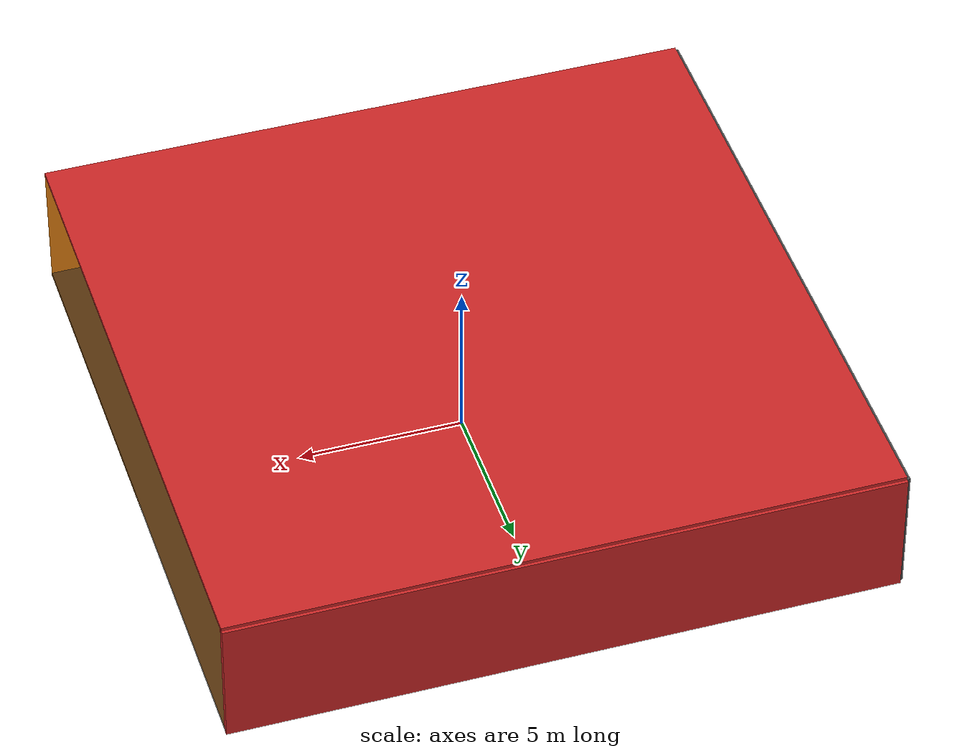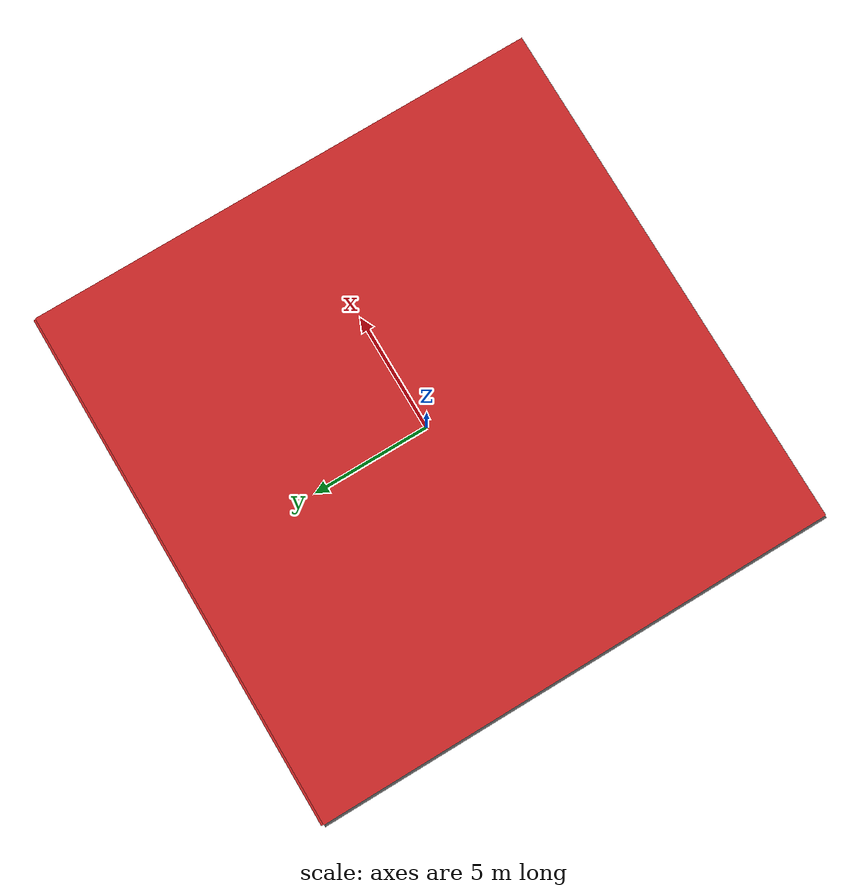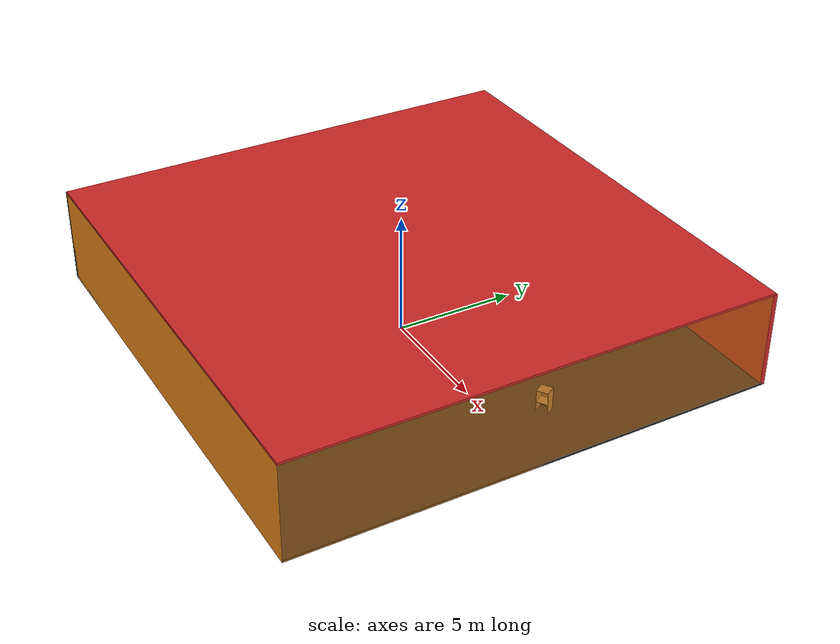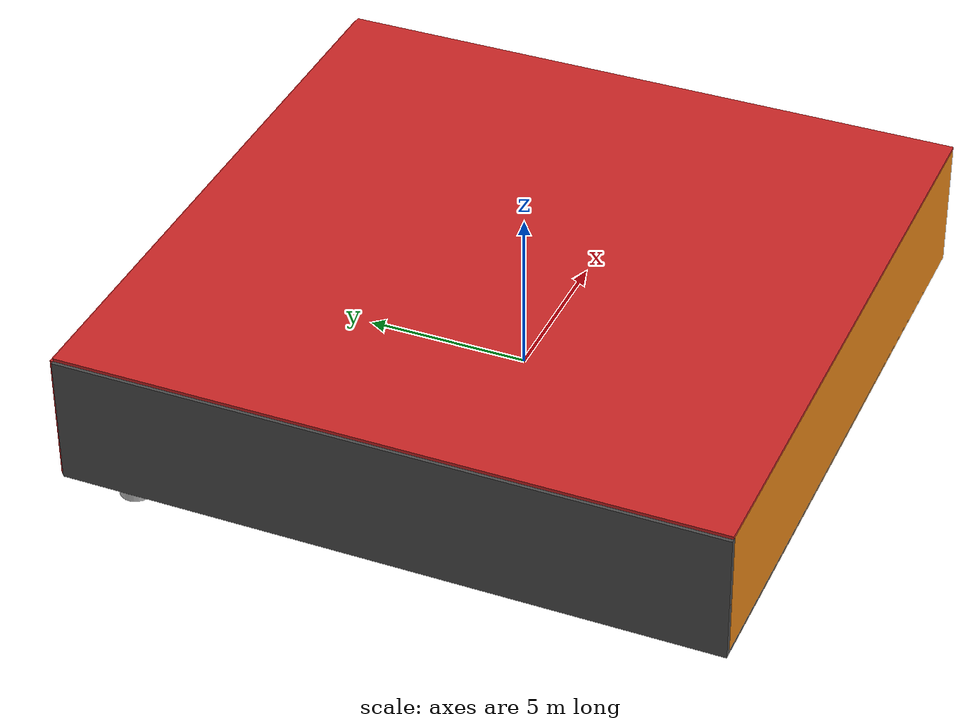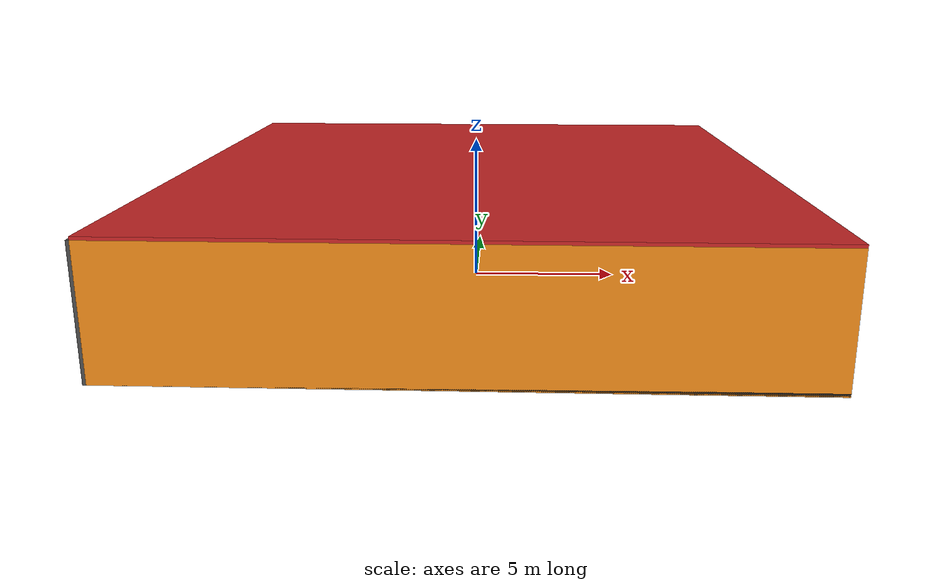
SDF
<sdf version="1.4">
 <world name="default">
  <physics type="ode">
   <max_step_size>0.001</max_step_size>
   <real_time_factor>1</real_time_factor>
   <real_time_update_rate>1000</real_time_update_rate>
   <gravity>0 0 -9.8</gravity>
  </physics>
  <scene><ambient>0.4 0.4 0.4 1</ambient><background>0.7 0.7 0.7 1</background><shadows>1</shadows></scene>
  <model name="Surrounding">
   <static>1</static>
   <link name="Ceiling">
    <collision name="Ceiling_Collision"><geometry><box><size>20 20 0.1</size></box></geometry></collision>
    <visual name="Ceiling_Visual">
     <geometry><box><size>20 20 0.1</size></box></geometry>
     <material>
      <script><uri>file://media/materials/scripts/gazebo.material</uri><name>Gazebo/Red</name></script>
     </material>
    </visual>
    <pose>0 0 4.05 0 0 0</pose>
   </link>
   <link name="Wall_South">
    <collision name="Wall_South_Collision">
     <geometry><box><size>20 0 4</size></box></geometry>
     <pose>0 0 2 0 -0 0</pose>
    </collision>
    <visual name="Wall_South_Visual">
     <pose>0 0 2 0 -0 0</pose>
     <geometry><box><size>20 0 4</size></box></geometry>
     <material>
      <script><uri>file://media/materials/scripts/gazebo.material</uri><name>Gazebo/Orange</name></script>
     </material>
    </visual>
    <velocity_decay><linear>0</linear><angular>0</angular></velocity_decay>
    <pose>0 -10 0 0 -0 0</pose>
   </link>
   <link name="Wall_East">
    <collision name="Wall_21_Collision">
     <geometry><box><size>20 0 4</size></box></geometry>
     <pose>0 0 2 0 -0 0</pose>
    </collision>
    <visual name="Wall_21_Visual">
     <pose>0 0 2 0 -0 0</pose>
     <geometry><box><size>20 0 4</size></box></geometry>
     <material>
      <script>
       <uri>file://media/materials/scripts/gazebo.material</uri>
       <name>Gazebo/OrangeTransparent</name>
      </script>
     </material>
    </visual>
    <velocity_decay><linear>0</linear><angular>0</angular></velocity_decay>
    <pose>10 0 0 0 -0 1.5708</pose>
   </link>
   <link name="Wall_North">
    <collision name="Wall_22_Collision">
     <geometry><box><size>20 0.2 4</size></box></geometry>
     <pose>0 0 2 0 -0 0</pose>
    </collision>
    <visual name="Wall_22_Visual">
     <pose>0 0 2 0 -0 0</pose>
     <geometry><box><size>20 0.2 4</size></box></geometry>
     <material>
      <script><uri>file://media/materials/scripts/gazebo.material</uri><name>Gazebo/RedGlow</name></script>
     </material>
    </visual>
    <velocity_decay><linear>0</linear><angular>0</angular></velocity_decay>
    <pose>0 10 0 0 -0 0</pose>
   </link>
   <link name="Wall_West">
    <collision name="Wall_23_Collision">
     <geometry><box><size>20 0.2 4</size></box></geometry>
     <pose>0 0 2 0 -0 0</pose>
    </collision>
    <visual name="Wall_23_Visual">
     <pose>0 0 2 0 -0 0</pose>
     <geometry><box><size>20 0.2 4</size></box></geometry>
     <material>
      <script><uri>file://media/materials/scripts/gazebo.material</uri><name>Gazebo/Road</name></script>
     </material>
    </visual>
    <velocity_decay><linear>0</linear><angular>0</angular></velocity_decay>
    <pose>-10 0 0 0 0 -1.5708</pose>
   </link>
   <link name="Ground_link">
    <collision name="collision">
     <pose>0 0 .05 0 -0 0</pose>
     <geometry><box><size>20 20 0.1</size></box></geometry>
    </collision>
    <visual name="visual">
     <pose>0 0 .05 0 -0 0</pose>
     <geometry><box><size>20 20 0.1</size></box></geometry>
     <material>
      <script><uri>file://media/materials/scripts/gazebo.material</uri><name>Gazebo/Black</name></script>
     </material>
    </visual>
   </link>
   <static>1</static>
  </model>
  <spherical_coordinates>
   <surface_model>EARTH_WGS84</surface_model>
   <latitude_deg>0</latitude_deg>
   <longitude_deg>0</longitude_deg>
   <elevation>0</elevation>
   <heading_deg>0</heading_deg>
  </spherical_coordinates>
  <light name="lightball_0" type="diffuse">
   <diffuse>0.8 0.8 0.8 1</diffuse>
   <specular>0.2 0.2 0.2 1</specular>
   <attenuation>
    <range>100</range>
    <constant>0.7</constant>
    <linear>0.01</linear>
    <quadratic>0.001</quadratic>
   </attenuation>
   <direction>-0.5 0.1 -0.9</direction>
   <pose>-8.22381691531 5.16176574636 3.73340577541 0 0 0</pose>
  </light>
  <light name="lightball_1" type="diffuse">
   <diffuse>0.8 0.8 0.8 1</diffuse>
   <specular>0.2 0.2 0.2 1</specular>
   <attenuation>
    <range>100</range>
    <constant>0.7</constant>
    <linear>0.01</linear>
    <quadratic>0.001</quadratic>
   </attenuation>
   <direction>-0.5 0.1 -0.9</direction>
   <pose>6.5133762964 -4.52632888793 2.7823363067 0 0 0</pose>
  </light>
  <light name="lightball_2" type="diffuse">
   <diffuse>0.8 0.8 0.8 1</diffuse>
   <specular>0.2 0.2 0.2 1</specular>
   <attenuation>
    <range>100</range>
    <constant>0.7</constant>
    <linear>0.01</linear>
    <quadratic>0.001</quadratic>
   </attenuation>
   <direction>-0.5 0.1 -0.9</direction>
   <pose>8.03369768511 5.46697998847 1.45496378601 0 0 0</pose>
  </light>
  <light name="lightball_3" type="diffuse">
   <diffuse>0.8 0.8 0.8 1</diffuse>
   <specular>0.2 0.2 0.2 1</specular>
   <attenuation>
    <range>100</range>
    <constant>0.7</constant>
    <linear>0.01</linear>
    <quadratic>0.001</quadratic>
   </attenuation>
   <direction>-0.5 0.1 -0.9</direction>
   <pose>-9.92515317621 5.54255407826 1.54493936994 0 0 0</pose>
  </light>
  <light name="lightball_4" type="diffuse">
   <diffuse>0.8 0.8 0.8 1</diffuse>
   <specular>0.2 0.2 0.2 1</specular>
   <attenuation>
    <range>100</range>
    <constant>0.7</constant>
    <linear>0.01</linear>
    <quadratic>0.001</quadratic>
   </attenuation>
   <direction>-0.5 0.1 -0.9</direction>
   <pose>1.18542914822 9.01332119047 1.81723584124 0 0 0</pose>
  </light>
  <light name="lightball_5" type="diffuse">
   <diffuse>0.8 0.8 0.8 1</diffuse>
   <specular>0.2 0.2 0.2 1</specular>
   <attenuation>
    <range>100</range>
    <constant>0.7</constant>
    <linear>0.01</linear>
    <quadratic>0.001</quadratic>
   </attenuation>
   <direction>-0.5 0.1 -0.9</direction>
   <pose>6.67155795166 5.377199683 1.07130834705 0 0 0</pose>
  </light>
  <light name="lightball_6" type="diffuse">
   <diffuse>0.8 0.8 0.8 1</diffuse>
   <specular>0.2 0.2 0.2 1</specular>
   <attenuation>
    <range>100</range>
    <constant>0.7</constant>
    <linear>0.01</linear>
    <quadratic>0.001</quadratic>
   </attenuation>
   <direction>-0.5 0.1 -0.9</direction>
   <pose>5.2756489095 8.58521230292 2.63912321762 0 0 0</pose>
  </light>
  <light name="lightball_7" type="diffuse">
   <diffuse>0.8 0.8 0.8 1</diffuse>
   <specular>0.2 0.2 0.2 1</specular>
   <attenuation>
    <range>100</range>
    <constant>0.7</constant>
    <linear>0.01</linear>
    <quadratic>0.001</quadratic>
   </attenuation>
   <direction>-0.5 0.1 -0.9</direction>
   <pose>0.345683285311 7.87131947373 1.7827433434 0 0 0</pose>
  </light>
  <light name="lightball_8" type="diffuse">
   <diffuse>0.8 0.8 0.8 1</diffuse>
   <specular>0.2 0.2 0.2 1</specular>
   <attenuation>
    <range>100</range>
    <constant>0.7</constant>
    <linear>0.01</linear>
    <quadratic>0.001</quadratic>
   </attenuation>
   <direction>-0.5 0.1 -0.9</direction>
   <pose>0.853890919984 3.3578976469 1.93805899357 0 0 0</pose>
  </light>
  <light name="lightball_9" type="diffuse">
   <diffuse>0.8 0.8 0.8 1</diffuse>
   <specular>0.2 0.2 0.2 1</specular>
   <attenuation>
    <range>100</range>
    <constant>0.7</constant>
    <linear>0.01</linear>
    <quadratic>0.001</quadratic>
   </attenuation>
   <direction>-0.5 0.1 -0.9</direction>
   <pose>-2.96872390031 -5.10896564358 0.649847195382 0 0 0</pose>
  </light>
  <light name="lightball_10" type="diffuse">
   <diffuse>0.8 0.8 0.8 1</diffuse>
   <specular>0.2 0.2 0.2 1</specular>
   <attenuation>
    <range>100</range>
    <constant>0.7</constant>
    <linear>0.01</linear>
    <quadratic>0.001</quadratic>
   </attenuation>
   <direction>-0.5 0.1 -0.9</direction>
   <pose>-9.71822195326 -2.55483154313 0.582181860133 0 0 0</pose>
  </light>
  <include>
   <uri>model://robocup_3Dsim_goal</uri>
   <pose>-7.81032593242 -5.27023300662 0 0 0 1.20751700859</pose>
  </include>
  <include>
   <uri>model://textured_shapes</uri>
   <pose>-7.98533582233 7.42826725783 0 0 0 1.12167060952</pose>
  </include>
  <include>
   <uri>model://construction_cone</uri>
   <pose>-1.43520132421 -4.24468907515 0 0 0 1.91322202793</pose>
  </include>
  <include><uri>model://table</uri><pose>-1.01945319993 4.60232617032 0 0 0 0.187847791577</pose></include>
  <include><uri>model://cabinet</uri><pose>1.53276294481 -3.74954524738 0 0 0 2.87751131238</pose></include>
  <include><uri>model://cabinet</uri><pose>1.29639726524 -2.22880255406 0 0 0 2.09755193741</pose></include>
  <include><uri>model://cabinet</uri><pose>7.37138305517 1.86687769313 0 0 0 2.13763680034</pose></include>
 </world>
</sdf>

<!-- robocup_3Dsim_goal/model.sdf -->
<sdf version="1.5">
  <model name="robocup_3d_goal">
    <static>true</static>
    <link name="left_post">
      <pose>0 1.05 0.45 0 0 0</pose>
      <collision name="collision">
        <geometry>
          <cylinder>
            <radius>0.05</radius>
            <length>0.9</length>
          </cylinder>
        </geometry>
      </collision>
      <visual name="visual">
        <geometry>
          <cylinder>
            <radius>0.05</radius>
            <length>0.9</length>
          </cylinder>
        </geometry>
        <material>
          <script>
            <uri>file://media/materials/scripts/gazebo.material</uri>
            <name>Gazebo/ZincYellow</name>
          </script>
        </material>
      </visual>
    </link>
    <link name="left_support_horiz_lower">
      <pose>0.30 1.05 0.01 0 0 0</pose>
      <collision name="collision">
        <geometry>
          <box>
            <size>0.50 0.02 0.02</size>
          </box>
        </geometry>
      </collision>
      <visual name="visual">
        <geometry>
          <box>
            <size>0.50 0.02 0.02</size>
          </box>
        </geometry>
        <material>
          <script>
            <uri>file://media/materials/scripts/gazebo.material</uri>
            <name>Gazebo/White</name>
          </script>
        </material>
      </visual>
    </link>
    <link name="left_support_horiz_upper">
      <pose>0.30 1.05 0.79 0 0 0</pose>
      <collision name="collision">
        <geometry>
          <box>
            <size>0.50 0.02 0.02</size>
          </box>
        </geometry>
      </collision>
      <visual name="visual">
        <geometry>
          <box>
            <size>0.50 0.02 0.02</size>
          </box>
        </geometry>
        <material>
          <script>
            <uri>file://media/materials/scripts/gazebo.material</uri>
            <name>Gazebo/White</name>
          </script>
        </material>
      </visual>
    </link>
    <link name="left_support_vertical">
      <pose>0.56 1.05 0.4 0 1.5708 0</pose>
      <collision name="collision">
        <geometry>
          <box>
            <size>0.80 0.02 0.02</size>
          </box>
        </geometry>
      </collision>
      <visual name="visual">
        <geometry>
          <box>
            <size>0.80 0.02 0.02</size>
          </box>
        </geometry>
        <material>
          <script>
            <uri>file://media/materials/scripts/gazebo.material</uri>
            <name>Gazebo/White</name>
          </script>
        </material>
      </visual>
    </link>
    <link name="right_support_horiz_lower">
      <pose>0.30 -1.05 0.01 0 0 0</pose>
      <collision name="collision">
        <geometry>
          <box>
            <size>0.50 0.02 0.02</size>
          </box>
        </geometry>
      </collision>
      <visual name="visual">
        <geometry>
          <box>
            <size>0.50 0.02 0.02</size>
          </box>
        </geometry>
        <material>
          <script>
            <uri>file://media/materials/scripts/gazebo.material</uri>
            <name>Gazebo/White</name>
          </script>
        </material>
      </visual>
    </link>
    <link name="right_support_horiz_upper">
      <pose>0.30 -1.05 0.79 0 0 0</pose>
      <collision name="collision">
        <geometry>
          <box>
            <size>0.50 0.02 0.02</size>
          </box>
        </geometry>
      </collision>
      <visual name="visual">
        <geometry>
          <box>
            <size>0.50 0.02 0.02</size>
          </box>
        </geometry>
        <material>
          <script>
            <uri>file://media/materials/scripts/gazebo.material</uri>
            <name>Gazebo/White</name>
          </script>
        </material>
      </visual>
    </link>
    <link name="right_support_vertical">
      <pose>0.56 -1.05 0.4 0 1.5708 0</pose>
      <collision name="collision">
        <geometry>
          <box>
            <size>0.80 0.02 0.02</size>
          </box>
        </geometry>
      </collision>
      <visual name="visual">
        <geometry>
          <box>
            <size>0.80 0.02 0.02</size>
          </box>
        </geometry>
        <material>
          <script>
            <uri>file://media/materials/scripts/gazebo.material</uri>
            <name>Gazebo/White</name>
          </script>
        </material>
      </visual>
    </link>
    <link name="center_support_horiz_lower">
      <pose>0.56 0 0.01 0 1.5708 0</pose>
      <collision name="collision">
        <geometry>
          <box>
            <size>0.02 2.08 0.02</size>
          </box>
        </geometry>
      </collision>
      <visual name="visual">
        <geometry>
          <box>
            <size>0.02 2.08 0.02</size>
          </box>
        </geometry>
        <material>
          <script>
            <uri>file://media/materials/scripts/gazebo.material</uri>
            <name>Gazebo/White</name>
          </script>
        </material>
      </visual>
    </link>
    <link name="center_support_horiz_upper">
      <pose>0.56 0 0.79 0 1.5708 0</pose>
      <collision name="collision">
        <geometry>
          <box>
            <size>0.02 2.08 0.02</size>
          </box>
        </geometry>
      </collision>
      <visual name="visual">
        <geometry>
          <box>
            <size>0.02 2.08 0.02</size>
          </box>
        </geometry>
        <material>
          <script>
            <uri>file://media/materials/scripts/gazebo.material</uri>
            <name>Gazebo/White</name>
          </script>
        </material>
      </visual>
    </link>
    <link name="right_post">
      <pose>0 -1.05 0.45 0 0 0</pose>
      <collision name="collision">
        <geometry>
          <cylinder>
            <radius>0.05</radius>
            <length>0.9</length>
          </cylinder>
        </geometry>
      </collision>
      <visual name="visual">
        <geometry>
          <cylinder>
            <radius>0.05</radius>
            <length>0.9</length>
          </cylinder>
        </geometry>
        <material>
          <script>
            <uri>file://media/materials/scripts/gazebo.material</uri>
            <name>Gazebo/ZincYellow</name>
          </script>
        </material>
      </visual>
    </link>
    <link name="crossbar">
      <pose>0 0 0.85 1.57 1.57 0</pose>
      <collision name="collision">
        <geometry>
          <cylinder>
            <radius>0.05</radius>
            <length>2.0</length>
          </cylinder>
        </geometry>
      </collision>
      <visual name="visual">
        <geometry>
          <cylinder>
            <radius>0.05</radius>
            <length>2.0</length>
          </cylinder>
        </geometry>
        <material>
          <script>
            <uri>file://media/materials/scripts/gazebo.material</uri>
            <name>Gazebo/ZincYellow</name>
          </script>
        </material>
      </visual>
    </link>
    <link name="center_net">
      <pose>0.56 0 0.40 0 0 0</pose>
      <collision name="collision">
        <geometry>
          <box>
            <size>0.01 2.1 0.80</size>
          </box>
        </geometry>
      </collision>
      <visual name="visual">
        <geometry>
          <box>
            <size>0.01 2.1 0.80</size>
          </box>
        </geometry>
        <material>
          <script>
            <uri>model://../model_source/models/robocup09_spl_field/materials/scripts/</uri>
            <uri>model://../model_source/models/robocup09_spl_field/materials/textures/</uri>
            <name>RoboCup/Net</name>
          </script>
        </material>
      </visual>
    </link>
    <link name="left_net">
      <pose>0.30 1.05 0.40 0 0 0</pose>
      <collision name="collision">
        <geometry>
          <box>
            <size>0.50 0.01 0.76</size>
          </box>
        </geometry>
      </collision>
      <visual name="visual">
        <geometry>
          <box>
            <size>0.50 0.01 0.76</size>
          </box>
        </geometry>
        <material>
          <script>
            <uri>model://../model_source/models/robocup09_spl_field/materials/scripts/</uri>
            <uri>model://../model_source/models/robocup09_spl_field/materials/textures/</uri>
            <name>RoboCup/Net</name>
          </script>
        </material>
      </visual>
    </link>
    <link name="right_net">
      <pose>0.30 -1.05 0.40 0 0 0</pose>
      <collision name="collision">
        <geometry>
          <box>
            <size>0.50 0.01 0.76</size>
          </box>
        </geometry>
      </collision>
      <visual name="visual">
        <geometry>
          <box>
            <size>0.50 0.01 0.76</size>
          </box>
        </geometry>
        <material>
          <script>
            <uri>model://../model_source/models/robocup09_spl_field/materials/scripts/</uri>
            <uri>model://../model_source/models/robocup09_spl_field/materials/textures/</uri>
            <name>RoboCup/Net</name>
          </script>
        </material>
      </visual>
    </link>
  </model>
</sdf>

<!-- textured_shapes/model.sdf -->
<sdf version="1.6">
  <model name="textured_shapes">
    <pose>0 0 0.5 0 0 0</pose>
    <link name="box">
      <pose>0 -1.5 0 0 0 0</pose>
      <collision name="collision">
        <geometry>
          <box>
            <size>1 1 1</size>
          </box>
        </geometry>
      </collision>
      <visual name="visual">
        <geometry>
          <box>
            <size>1 1 1</size>
          </box>
        </geometry>
        <material>
          <script>
            <uri>model://../model_source/models/textured_shapes/materials/scripts</uri>
            <uri>model://../model_source/models/textured_shapes/materials/textures</uri>
            <name>TexturedShape/Squares</name>
          </script>
        </material>
      </visual>
    </link>
    <link name="sphere">
      <collision name="collision">
        <geometry>
          <sphere>
            <radius>0.5</radius>
          </sphere>
        </geometry>
      </collision>
      <visual name="visual">
        <geometry>
          <sphere>
            <radius>0.5</radius>
          </sphere>
        </geometry>
        <material>
          <script>
            <uri>model://../model_source/models/textured_shapes/materials/scripts</uri>
            <uri>model://../model_source/models/textured_shapes/materials/textures</uri>
            <name>TexturedShape/Squares</name>
          </script>
        </material>
      </visual>
    </link>
    <link name="cylinder">
      <pose>0 1.5 0 0 0 0</pose>
      <collision name="collision">
        <geometry>
          <cylinder>
            <radius>0.5</radius>
            <length>1</length>
          </cylinder>
        </geometry>
      </collision>
      <visual name="visual">
        <geometry>
          <cylinder>
            <radius>0.5</radius>
            <length>1</length>
          </cylinder>
        </geometry>
        <material>
          <script>
            <uri>model://../model_source/models/textured_shapes/materials/scripts</uri>
            <uri>model://../model_source/models/textured_shapes/materials/textures</uri>
            <name>TexturedShape/Squares</name>
          </script>
        </material>
      </visual>
    </link>
  </model>
</sdf>

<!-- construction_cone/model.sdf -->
<sdf version="1.5">
  <model name="Construction Cone">
    <link name="link">
      <collision name="collision">
        <geometry>
          <mesh>
            <scale>10 10 10</scale>
            <uri>file://isr-testbed/construction_cone/meshes/construction_cone.dae</uri>
          </mesh>
        </geometry>
      </collision>
      <visual name="visual">
        <geometry>
          <mesh>
            <scale>10 10 10</scale>
            <uri>file://isr-testbed/construction_cone/meshes/construction_cone.dae</uri>
          </mesh>
        </geometry>
      </visual>
    </link>
  </model>
</sdf>

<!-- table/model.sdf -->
<sdf version="1.5">
  <model name="table">
    <static>true</static>
    <link name="link">
      <collision name="surface">
        <pose>0 0 1.0 0 0 0</pose>
        <geometry>
          <box>
            <size>1.5 0.8 0.03</size>
          </box>
        </geometry>
        <surface>
          <friction>
            <ode>
              <mu>0.6</mu>
              <mu2>0.6</mu2>
            </ode>
          </friction>
        </surface>
      </collision>
      <visual name="visual1">
        <pose>0 0 1.0 0 0 0</pose>
        <geometry>
          <box>
            <size>1.5 0.8 0.03</size>
          </box>
        </geometry>
        <material>
          <script>
            <uri>model://media/materials/scripts/gazebo.material</uri>
            <name>Gazebo/Wood</name>
          </script>
        </material>
      </visual>
      <collision name="front_left_leg">
        <pose>0.68 0.38 0.5 0 0 0</pose>
        <geometry>
          <cylinder>
            <radius>0.02</radius>
            <length>1.0</length>
          </cylinder>
        </geometry>
      </collision>
      <visual name="front_left_leg">
        <pose>0.68 0.38 0.5 0 0 0</pose>
        <geometry>
          <cylinder>
            <radius>0.02</radius>
            <length>1.0</length>
          </cylinder>
        </geometry>
        <material>
          <script>
            <uri>model://media/materials/scripts/gazebo.material</uri>
            <name>Gazebo/Grey</name>
          </script>
        </material>
      </visual>
      <collision name="front_right_leg">
        <pose>0.68 -0.38 0.5 0 0 0</pose>
        <geometry>
          <cylinder>
            <radius>0.02</radius>
            <length>1.0</length>
          </cylinder>
        </geometry>
      </collision>
      <visual name="front_right_leg">
        <pose>0.68 -0.38 0.5 0 0 0</pose>
        <geometry>
          <cylinder>
            <radius>0.02</radius>
            <length>1.0</length>
          </cylinder>
        </geometry>
        <material>
          <script>
            <uri>model://media/materials/scripts/gazebo.material</uri>
            <name>Gazebo/Grey</name>
          </script>
        </material>
      </visual>
      <collision name="back_right_leg">
        <pose>-0.68 -0.38 0.5 0 0 0</pose>
        <geometry>
          <cylinder>
            <radius>0.02</radius>
            <length>1.0</length>
          </cylinder>
        </geometry>
      </collision>
      <visual name="back_right_leg">
        <pose>-0.68 -0.38 0.5 0 0 0</pose>
        <geometry>
          <cylinder>
            <radius>0.02</radius>
            <length>1.0</length>
          </cylinder>
        </geometry>
        <material>
          <script>
            <uri>model://media/materials/scripts/gazebo.material</uri>
            <name>Gazebo/Grey</name>
          </script>
        </material>
      </visual>
      <collision name="back_left_leg">
        <pose>-0.68 0.38 0.5 0 0 0</pose>
        <geometry>
          <cylinder>
            <radius>0.02</radius>
            <length>1.0</length>
          </cylinder>
        </geometry>
      </collision>
      <visual name="back_left_leg">
        <pose>-0.68 0.38 0.5 0 0 0</pose>
        <geometry>
          <cylinder>
            <radius>0.02</radius>
            <length>1.0</length>
          </cylinder>
        </geometry>
        <material>
          <script>
            <uri>model://media/materials/scripts/gazebo.material</uri>
            <name>Gazebo/Grey</name>
          </script>
        </material>
      </visual>
    </link>
  </model>
</sdf>

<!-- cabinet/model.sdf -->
<sdf version="1.5">
  <model name="cabinet">
    <static>true</static>
    <link name="cabinet_bottom_plate">
      <inertial>
        <pose>0 0 -1 0 0 0</pose>
        <inertia>
          <ixx>2.050000</ixx>
          <ixy>0</ixy>
          <ixz>0</ixz>
          <iyy>2.050000</iyy>
          <iyz>0</iyz>
          <izz>2.050000</izz>
        </inertia>
        <mass>25.000000</mass>
      </inertial>
      <collision name="cabinet_bottom_plate_geom">
        <pose>0 0 0.010000 0 0 0</pose>
        <geometry>
          <box>
            <size>0.450000 0.450000 0.020000</size>
          </box>
        </geometry>
      </collision>
      <visual name="cabinet_bottom_plate_geom_visual">
        <pose>0 0 0.010000 0 0 0</pose>
        <geometry>
          <box>
            <size>0.450000 0.450000 0.020000</size>
          </box>
        </geometry>
        <material>
          <script>
            <uri>model://media/materials/scripts/gazebo.material</uri>
            <name>Gazebo/Wood</name>
          </script>
        </material>
      </visual>
      <collision name="cabinet_bottom_plate_geom_cabinet_back_plate">
        <pose>0.235000 0 0.510000 0 0 0</pose>
        <geometry>
          <box>
            <size>0.020000 0.450000 1.020000</size>
          </box>
        </geometry>
      </collision>
      <visual name="cabinet_bottom_plate_geom_cabinet_back_plate_visual">
        <pose>0.235000 0 0.510000 0 0 0</pose>
        <geometry>
          <box>
            <size>0.020000 0.450000 1.020000</size>
          </box>
        </geometry>
        <material>
          <script>
            <uri>model://media/materials/scripts/gazebo.material</uri>
            <name>Gazebo/Wood</name>
          </script>
        </material>
      </visual>
      <collision name="cabinet_bottom_plate_geom_cabinet_left_plate">
        <pose>0 0.235000 0.510000 0 0 0</pose>
        <geometry>
          <box>
            <size>0.450000 0.020000 1.020000</size>
          </box>
        </geometry>
      </collision>
      <visual name="cabinet_bottom_plate_geom_cabinet_left_plate_visual">
        <pose>0 0.235000 0.510000 0 0 0</pose>
        <geometry>
          <box>
            <size>0.450000 0.020000 1.020000</size>
          </box>
        </geometry>
        <material>
          <script>
            <uri>model://media/materials/scripts/gazebo.material</uri>
            <name>Gazebo/Wood</name>
          </script>
        </material>
      </visual>
      <collision name="cabinet_bottom_plate_geom_cabinet_middle_plate">
        <pose>0 0 0.510000 0 0 0</pose>
        <geometry>
          <box>
            <size>0.450000 0.450000 0.020000</size>
          </box>
        </geometry>
      </collision>
      <visual name="cabinet_bottom_plate_geom_cabinet_middle_plate_visual">
        <pose>0 0 0.510000 0 0 0</pose>
        <geometry>
          <box>
            <size>0.450000 0.450000 0.020000</size>
          </box>
        </geometry>
        <material>
          <script>
            <uri>model://media/materials/scripts/gazebo.material</uri>
            <name>Gazebo/Wood</name>
          </script>
        </material>
      </visual>
      <collision name="cabinet_bottom_plate_geom_cabinet_right_plate">
        <pose>0 -0.235000 0.510000 0 0 0</pose>
        <geometry>
          <box>
            <size>0.450000 0.020000 1.020000</size>
          </box>
        </geometry>
      </collision>
      <visual name="cabinet_bottom_plate_geom_cabinet_right_plate_visual">
        <pose>0 -0.235000 0.510000 0 0 0</pose>
        <geometry>
          <box>
            <size>0.450000 0.020000 1.020000</size>
          </box>
        </geometry>
        <material>
          <script>
            <uri>model://media/materials/scripts/gazebo.material</uri>
            <name>Gazebo/Wood</name>
          </script>
        </material>
      </visual>
      <collision name="cabinet_bottom_plate_geom_cabinet_top_plate">
        <pose>0 0 1.010000 0 0 0</pose>
        <geometry>
          <box>
            <size>0.450000 0.450000 0.020000</size>
          </box>
        </geometry>
      </collision>
      <visual name="cabinet_bottom_plate_geom_cabinet_top_plate_visual">
        <pose>0 0 1.010000 0 0 0</pose>
        <geometry>
          <box>
            <size>0.450000 0.450000 0.020000</size>
          </box>
        </geometry>
        <material>
          <script>
            <uri>model://media/materials/scripts/gazebo.material</uri>
            <name>Gazebo/Wood</name>
          </script>
        </material>
      </visual>
    </link>
  </model>
</sdf>
